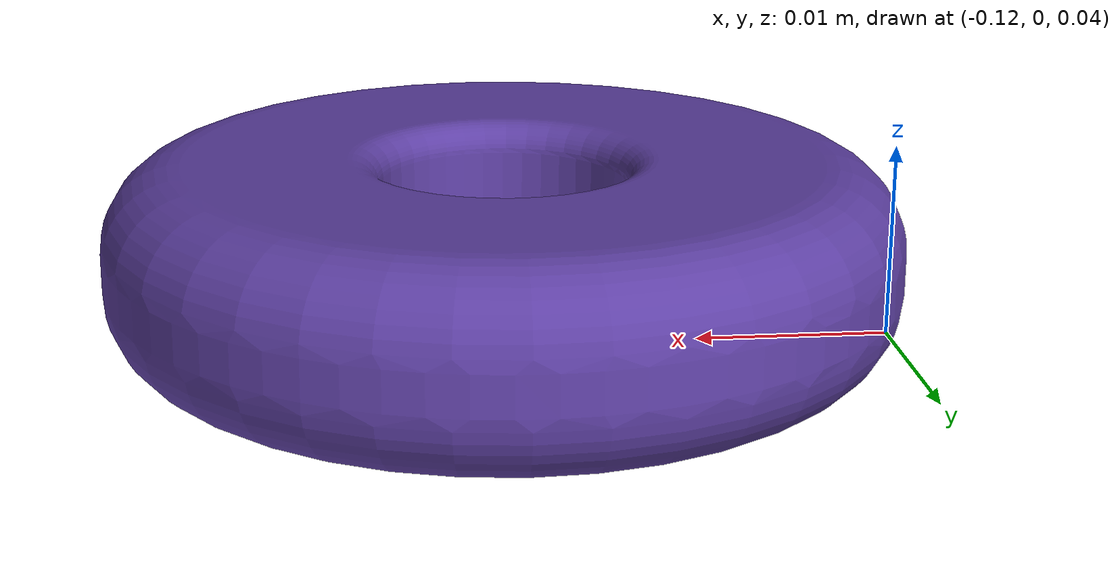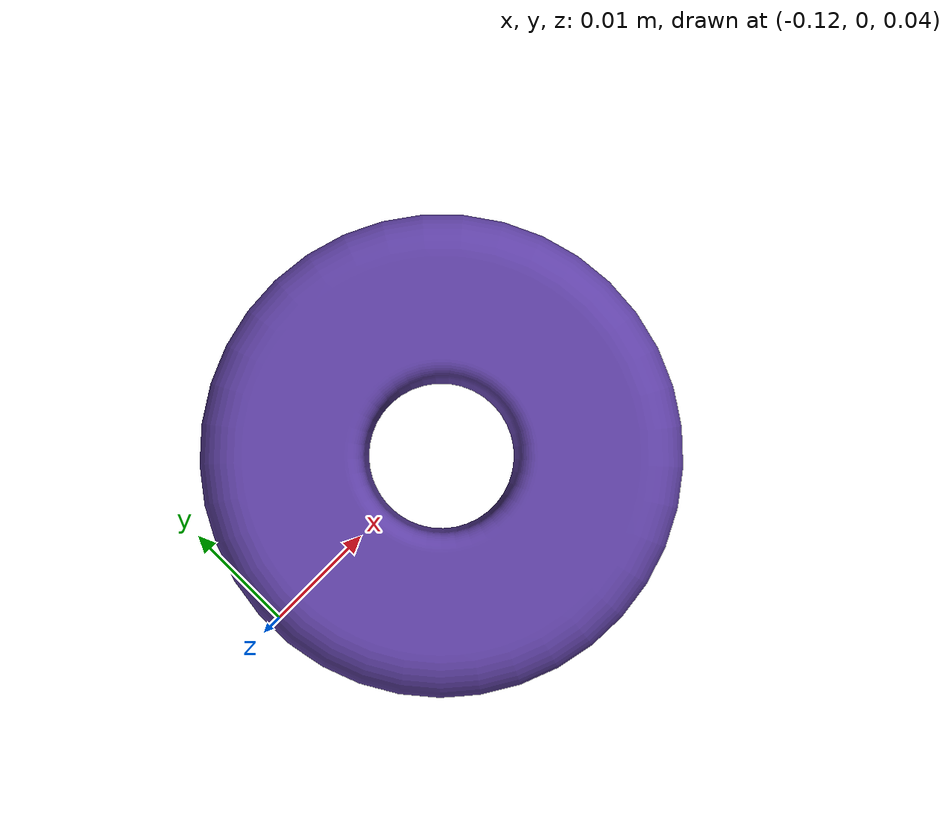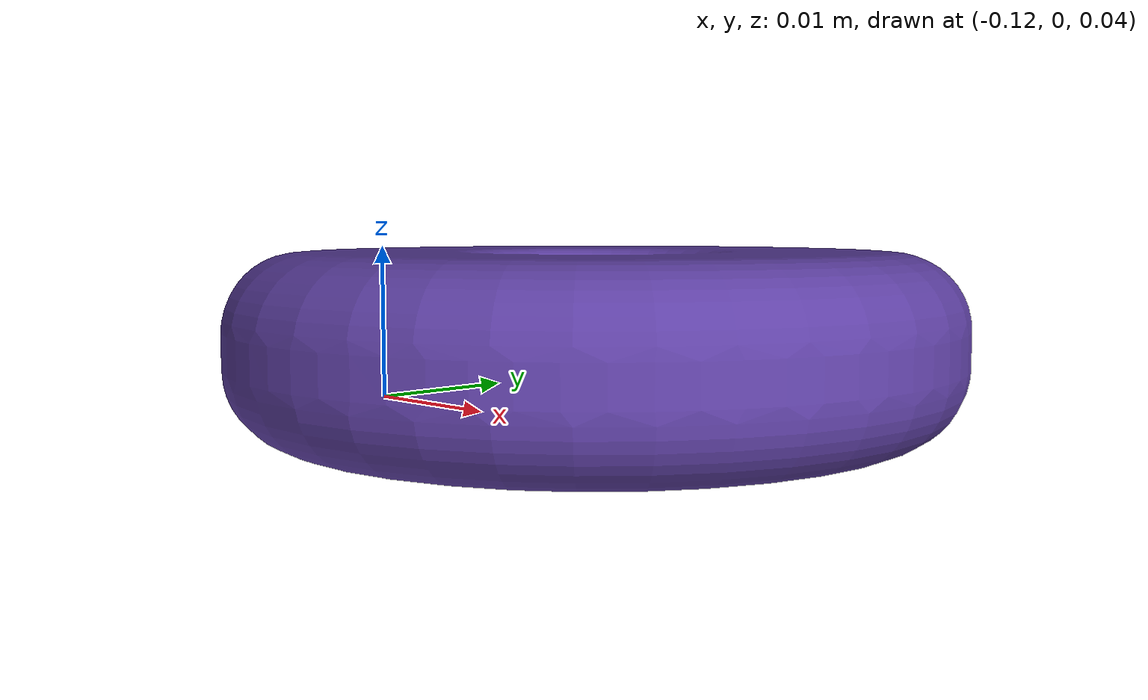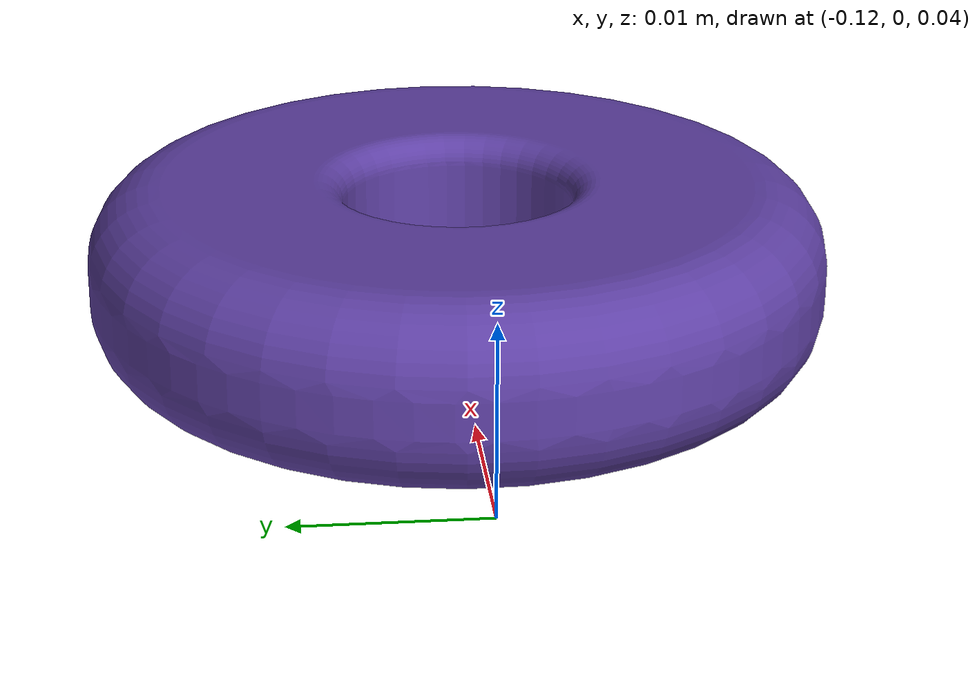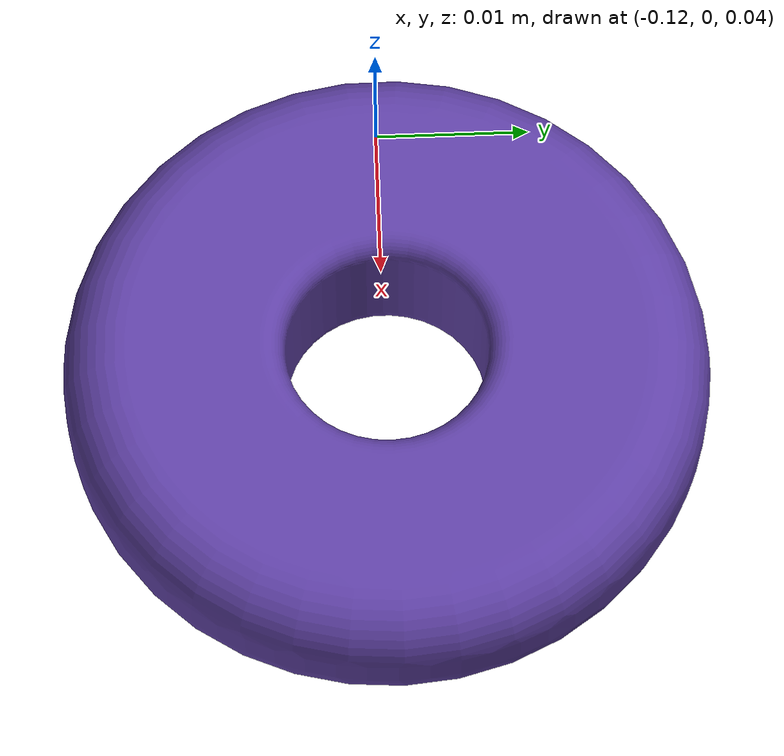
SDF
<?xml version="1.0" ?>
<sdf version="1.6">
    <model name="disk4">
        <link name="disk4">
            <frame name="disk4_frame">
                <pose>0 0 0 0 -0 0</pose>
            </frame>
            <visual name="disk4_0_disk4_visual">
                <pose>0 0 0 0 -0 0</pose>
                <geometry>
                    <mesh>
                        <uri>file://home/leo/workspace/ur_gz/src/Universal_Robots_ROS2_Ignition_Simulation/ur_simulation_gz/sdf/models/disk4/disk4.dae</uri>
                    </mesh>
                </geometry>
                <material>
                    <ambient>0.3686274509803921795 0.25098039215686274161 0.6431372549019608309 1</ambient>
                    <diffuse>0.3686274509803921795 0.25098039215686274161 0.6431372549019608309 1</diffuse>
                    <specular>0.1 0.1 0.1 1</specular>
                    <emissive>0 0 0 0</emissive>
                </material>
            </visual>
            <collision name="disk4_0_disk4_visual">
                <pose>0 0 0 0 -0 0</pose>
                <geometry>
                    <mesh>l
                        <uri>file://home/leo/workspace/ur_gz/src/Universal_Robots_ROS2_Ignition_Simulation/ur_simulation_gz/sdf/models/disk4/disk4.stl</uri>
                    </mesh>
                </geometry>
            </collision>
            <inertial>
                <pose>-3.107050763947849649e-17 -0.032500000000000014988 0.032499999999999994171 0 0 0</pose>
                <mass>0.020357520395261858442</mass>
                <inertia>
                    <ixx>1.6990047229878961509e-06</ixx><ixy>0</ixy><ixz>0</ixz>
                    <iyy>1.6990047229878957274e-06</iyy><iyz>0</iyz>
                    <izz>3.1808625617596656696e-06</izz>
                </inertia>
            </inertial>
        </link>
    </model>
</sdf>
